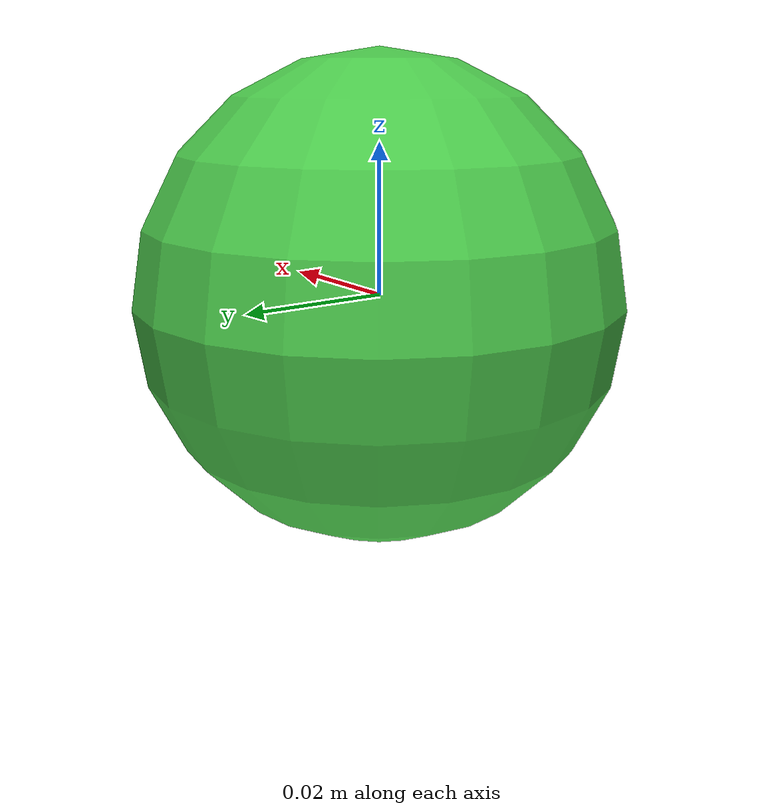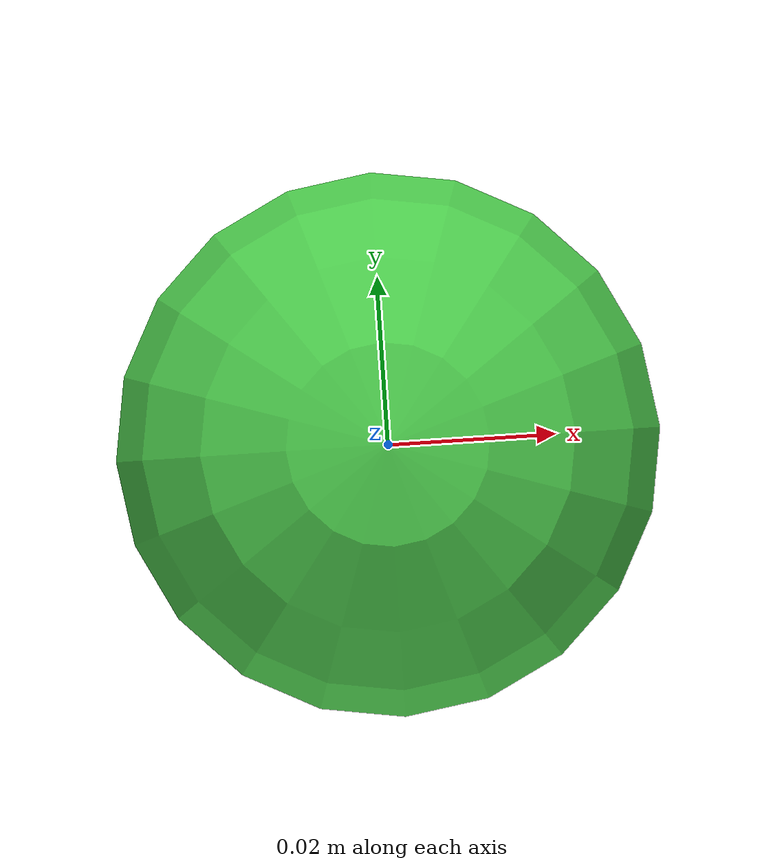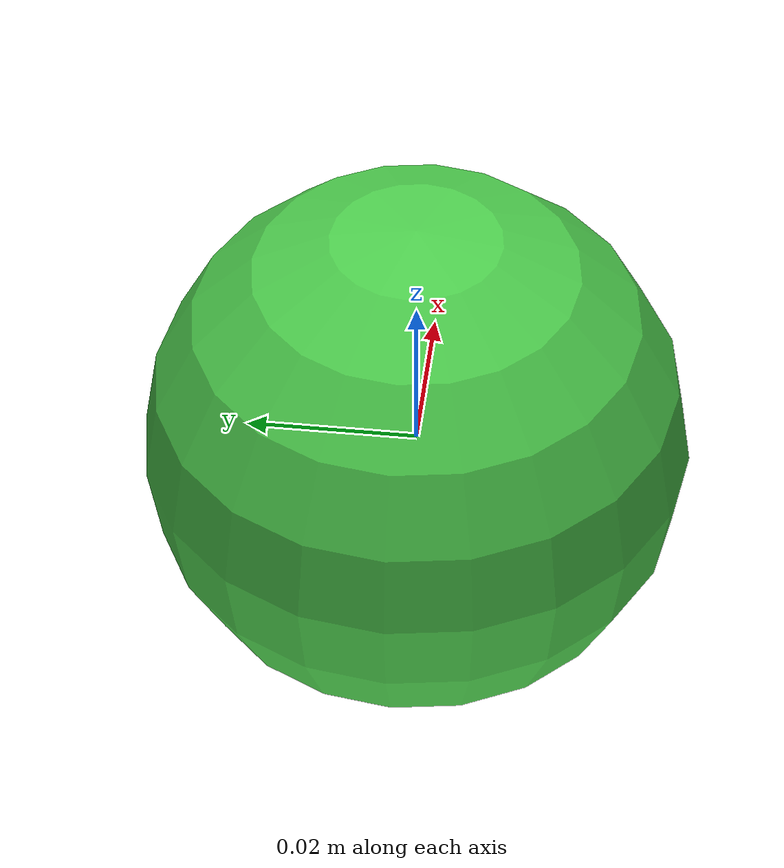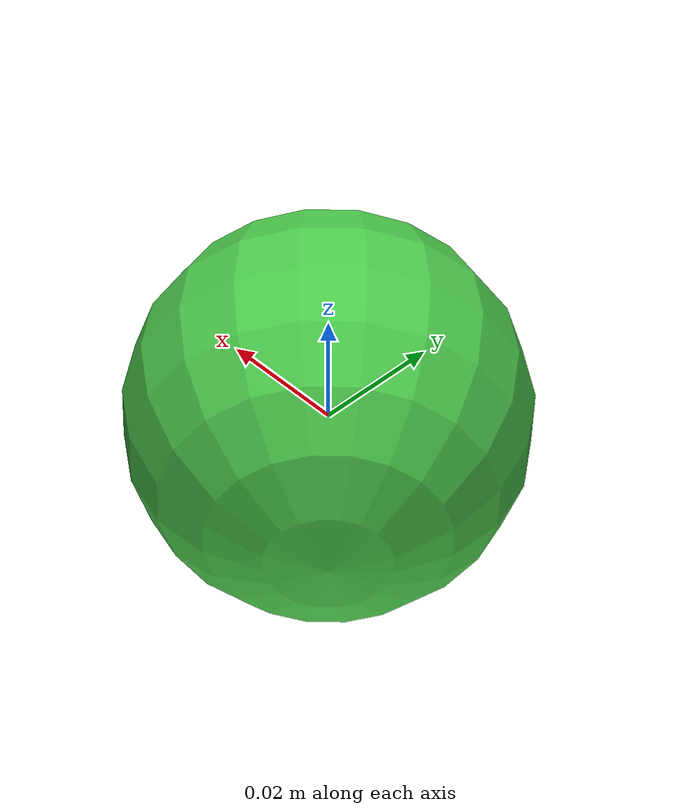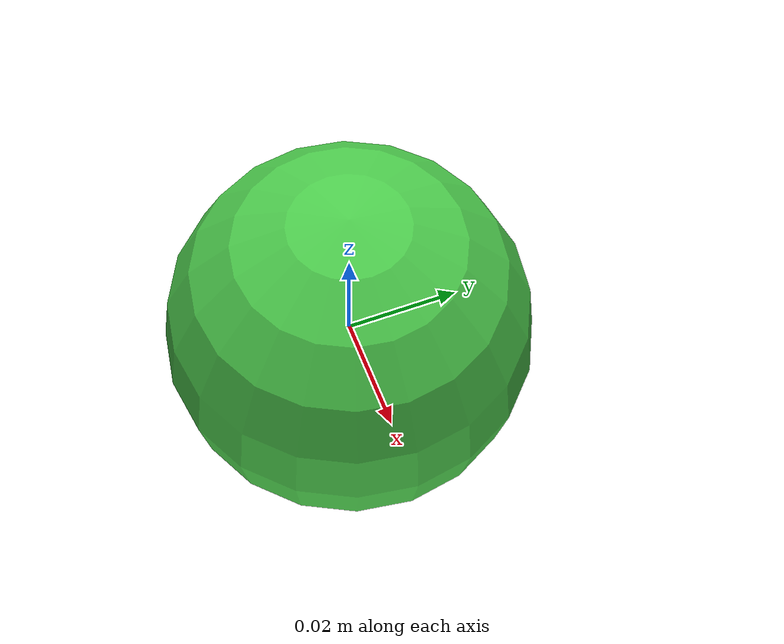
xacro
<?xml version="1.0"?>
<robot xmlns:xacro="http://ros.org/wiki/xacro" name="tennis_ball">
  <link name="tennis_ball_link">
    <visual>
      <geometry>
        <sphere radius="0.032"/>
      </geometry>
      <material name="green">
        <color rgba="0.3 0.8 0.3 1.0"/>
      </material>
    </visual>
    <collision>
      <geometry>
        <sphere radius="0.032"/>
      </geometry>
    </collision>
    <inertial>
      <mass value="0.057"/>
      <origin xyz="0 0 0" />
      <inertia ixx="1e-4" iyy="1e-4" izz="1e-4" ixy="0" ixz="0" iyz="0"/>
    </inertial>
  </link>
</robot>
